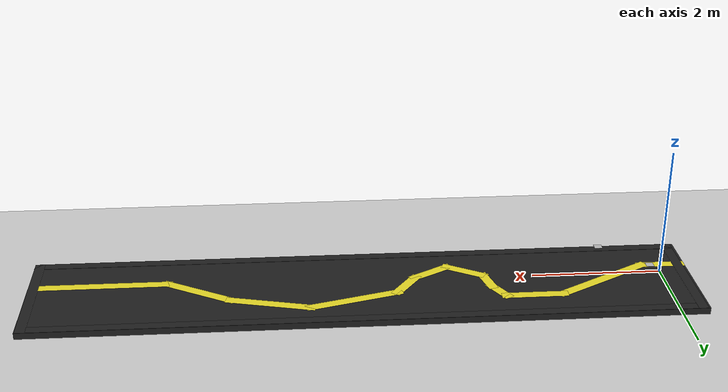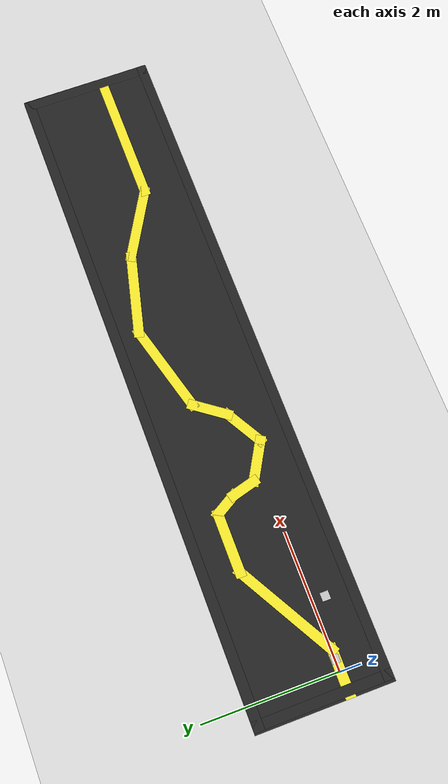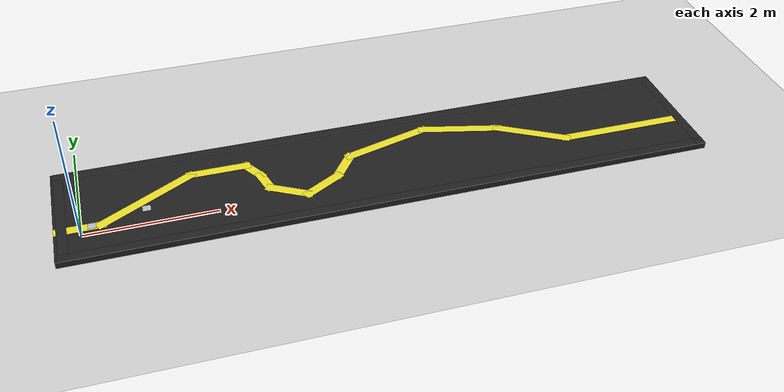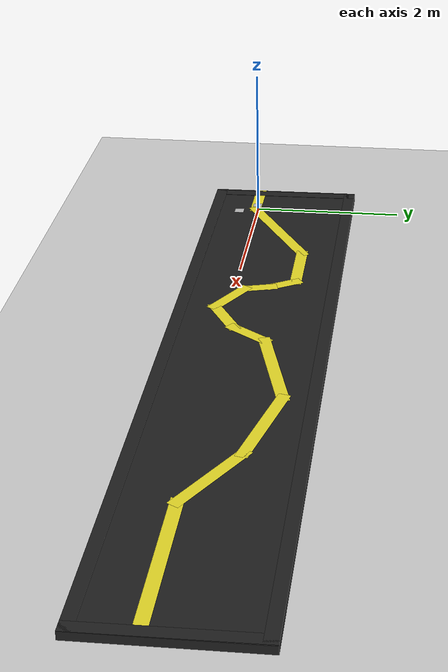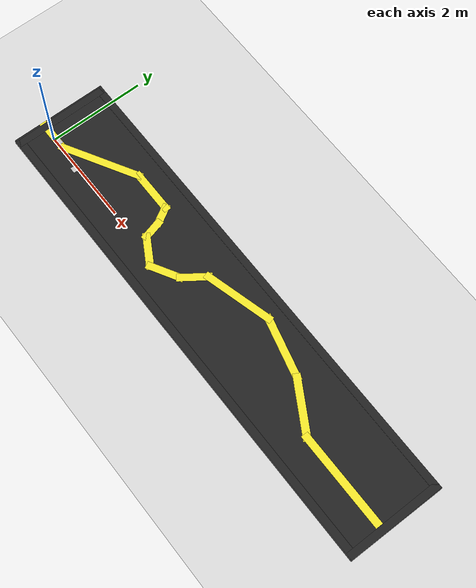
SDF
<sdf version="1.6">
 <world name="default">
  <light name="sun" type="directional">
   <pose>0 0 10 0 -0 0</pose>
   <diffuse>0.8 0.8 0.8 1</diffuse>
   <specular>0.2 0.2 0.2 1</specular>
   <attenuation>
    <range>1000</range>
    <constant>0.9</constant>
    <linear>0.01</linear>
    <quadratic>0.001</quadratic>
   </attenuation>
   <direction>-0.5 0.1 -0.9</direction>
  </light>
  <model name="ground_plane">
   <static>1</static>
   <link name="link">
    <collision name="collision">
     <geometry><plane><normal>0 0 1</normal><size>100 100</size></plane></geometry>
     <surface><friction><ode><mu>100</mu><mu2>50</mu2></ode></friction></surface>
    </collision>
    <visual name="visual">
     <cast_shadows>0</cast_shadows>
     <geometry><plane><normal>0 0 1</normal><size>100 100</size></plane></geometry>
     <material>
      <script><uri>file://media/materials/scripts/gazebo.material</uri><name>Gazebo/Grey</name></script>
     </material>
    </visual>
   </link>
  </model>
  <gravity>0 0 -9.8</gravity>
  <magnetic_field>6e-06 2.3e-05 -4.2e-05</magnetic_field>
  <atmosphere type="adiabatic"/>
  <physics name="default_physics" default="0" type="ode">
   <max_step_size>0.001</max_step_size>
   <real_time_factor>1</real_time_factor>
   <real_time_update_rate>1000</real_time_update_rate>
  </physics>
  <scene><ambient>0.4 0.4 0.4 1</ambient><background>0.7 0.7 0.7 1</background><shadows>1</shadows></scene>
  <audio><device>default</device></audio>
  <spherical_coordinates>
   <surface_model>EARTH_WGS84</surface_model>
   <latitude_deg>0</latitude_deg>
   <longitude_deg>0</longitude_deg>
   <elevation>0</elevation>
   <heading_deg>0</heading_deg>
  </spherical_coordinates>
  <model name="aruco">
   <static>1</static>
   <link name="link">
    <visual name="visual">
     <geometry><mesh><uri>model://aruco/meshes/aruco.dae</uri><scale>0.24 0.24 0.24</scale></mesh></geometry>
    </visual>
   </link>
   <pose>0.109589 0.012177 0.131893 0 1.54825 0</pose>
  </model>
  <model name="aruco2">
   <static>1</static>
   <link name="link">
    <visual name="visual">
     <geometry><mesh><uri>model://aruco2/meshes/aruco2.dae</uri><scale>0.24 0.24 0.24</scale></mesh></geometry>
    </visual>
   </link>
   <pose>0.910885 -0.139689 0.39892 3.14159 1.56861 3.14159</pose>
  </model>
  <model name="PISTA">
   <pose>4.6485 0.363619 0.13575 -3.1364 0 0</pose>
   <link name="Floor_0">
    <collision name="Floor_0_Collision">
     <geometry><box><size>10.0404 2.0108 0.1</size></box></geometry>
     <pose>0 0 0.05 0 -0 0</pose>
    </collision>
    <visual name="Floor_0_Visual">
     <pose>0 0 0.05 0 -0 0</pose>
     <geometry><box><size>10.0404 2.0108 0.1</size></box></geometry>
     <material>
      <script><uri>file://media/materials/scripts/gazebo.material</uri><name>Gazebo/Black</name></script>
      <ambient>0 0 0 0</ambient>
     </material>
     <meta><layer>1</layer></meta>
    </visual>
    <pose>0 -0 0.005 0 -0 0</pose>
   </link>
   <link name="Wall_10">
    <collision name="Wall_10_Collision">
     <geometry><box><size>2.01003 0.15 0.005</size></box></geometry>
     <pose>0 0 0.0025 0 -0 0</pose>
    </collision>
    <visual name="Wall_10_Visual">
     <pose>0 0 0.0025 0 -0 0</pose>
     <geometry><box><size>2.01003 0.15 0.005</size></box></geometry>
     <material>
      <script><uri>file://media/materials/scripts/gazebo.material</uri><name>Gazebo/Black</name></script>
      <ambient>0 0 0 0</ambient>
     </material>
     <meta><layer>0</layer></meta>
    </visual>
    <pose>-4.9102 -0 0 0 -0 -1.57617</pose>
   </link>
   <link name="Wall_12">
    <collision name="Wall_12_Collision">
     <geometry><box><size>10 0.15 0.005</size></box></geometry>
     <pose>0 0 0.0025 0 -0 0</pose>
    </collision>
    <visual name="Wall_12_Visual">
     <pose>0 0 0.0025 0 -0 0</pose>
     <geometry><box><size>10 0.15 0.005</size></box></geometry>
     <material>
      <script><uri>file://media/materials/scripts/gazebo.material</uri><name>Gazebo/Black</name></script>
      <ambient>0 0 0 0</ambient>
     </material>
     <meta><layer>1</layer></meta>
    </visual>
    <pose>0.009799 -0.93 0.005 0 -0 0</pose>
   </link>
   <link name="Wall_13">
    <collision name="Wall_13_Collision">
     <geometry><box><size>2.01003 0.15 0.005</size></box></geometry>
     <pose>0 0 0.0025 0 -0 0</pose>
    </collision>
    <visual name="Wall_13_Visual">
     <pose>0 0 0.0025 0 -0 0</pose>
     <geometry><box><size>2.01003 0.15 0.005</size></box></geometry>
     <material>
      <script><uri>file://media/materials/scripts/gazebo.material</uri><name>Gazebo/Black</name></script>
      <ambient>0 0 0 0</ambient>
     </material>
     <meta><layer>1</layer></meta>
    </visual>
    <pose>4.9398 -0 0.005 0 -0 1.56542</pose>
   </link>
   <link name="Wall_14">
    <collision name="Wall_14_Collision">
     <geometry><box><size>10 0.15 0.005</size></box></geometry>
     <pose>0 0 0.0025 0 -0 0</pose>
    </collision>
    <visual name="Wall_14_Visual">
     <pose>0 0 0.0025 0 -0 0</pose>
     <geometry><box><size>10 0.15 0.005</size></box></geometry>
     <material>
      <script><uri>file://media/materials/scripts/gazebo.material</uri><name>Gazebo/Black</name></script>
      <ambient>0 0 0 0</ambient>
     </material>
     <meta><layer>1</layer></meta>
    </visual>
    <pose>0.019799 0.93 0.005 0 -0 3.14159</pose>
   </link>
   <link name="Wall_15">
    <collision name="Wall_15_Collision">
     <geometry><box><size>2.01003 0.15 0.005</size></box></geometry>
     <pose>0 0 0.0025 0 -0 0</pose>
    </collision>
    <visual name="Wall_15_Visual">
     <pose>0 0 0.0025 0 -0 0</pose>
     <geometry><box><size>2.01003 0.15 0.005</size></box></geometry>
     <material>
      <script><uri>file://media/materials/scripts/gazebo.material</uri><name>Gazebo/Black</name></script>
      <ambient>0 0 0 0</ambient>
     </material>
     <meta><layer>1</layer></meta>
    </visual>
    <pose>-4.9102 -0 0.005 0 -0 -1.57617</pose>
   </link>
   <link name="Wall_16">
    <collision name="Wall_16_Collision">
     <geometry><box><size>0.75 0.15 0.01</size></box></geometry>
     <pose>0 0 0.003 0 -0 0</pose>
    </collision>
    <visual name="Wall_16_Visual">
     <pose>0 0 0.003 0 -0 0</pose>
     <geometry><box><size>0.75 0.15 0.008</size></box></geometry>
     <material>
      <script><uri>file://media/materials/scripts/gazebo.material</uri><name>Gazebo/Yellow</name></script>
      <ambient>1 1 1 1</ambient>
     </material>
     <meta><layer>1</layer></meta>
    </visual>
    <pose>-4.6452 0.36 0.005 0 -0 0</pose>
   </link>
   <link name="Wall_17">
    <collision name="Wall_17_Collision">
     <geometry><box><size>1.74732 0.15 0.01</size></box></geometry>
     <pose>0 0 0.003 0 -0 0</pose>
    </collision>
    <visual name="Wall_17_Visual">
     <pose>0 0 0.003 0 -0 0</pose>
     <geometry><box><size>1.74732 0.15 0.01</size></box></geometry>
     <material>
      <script><uri>file://media/materials/scripts/gazebo.material</uri><name>Gazebo/Yellow</name></script>
      <ambient>1 1 1 1</ambient>
     </material>
     <meta><layer>1</layer></meta>
    </visual>
    <pose>-3.6522 -0.037 0.005 0 -0 -0.520233</pose>
   </link>
   <link name="Wall_18">
    <collision name="Wall_18_Collision">
     <geometry><box><size>1 0.15 0.01</size></box></geometry>
     <pose>0 0 0.003 0 -0 0</pose>
    </collision>
    <visual name="Wall_18_Visual">
     <pose>0 0 0.003 0 -0 0</pose>
     <geometry><box><size>1 0.15 0.01</size></box></geometry>
     <material>
      <script><uri>file://media/materials/scripts/gazebo.material</uri><name>Gazebo/Yellow</name></script>
      <ambient>1 1 1 1</ambient>
     </material>
     <meta><layer>1</layer></meta>
    </visual>
    <pose>-2.5342 -0.434 0.005 0 -0 0</pose>
   </link>
   <link name="Wall_19">
    <collision name="Wall_19_Collision">
     <geometry><box><size>0.494723 0.15 0.01</size></box></geometry>
     <pose>0 0 0.003 0 -0 0</pose>
    </collision>
    <visual name="Wall_19_Visual">
     <pose>0 0 0.003 0 -0 0</pose>
     <geometry><box><size>0.494723 0.15 0.01</size></box></geometry>
     <material>
      <script><uri>file://media/materials/scripts/gazebo.material</uri><name>Gazebo/Yellow</name></script>
      <ambient>1 1 1 1</ambient>
     </material>
     <meta><layer>1</layer></meta>
    </visual>
    <pose>-2.0217 -0.2855 0.005 0 -0 1.03834</pose>
   </link>
   <link name="Wall_20">
    <collision name="Wall_20_Collision">
     <geometry><box><size>0.5 0.15 0.01</size></box></geometry>
     <pose>0 0 0.003 0 -0 0</pose>
    </collision>
    <visual name="Wall_20_Visual">
     <pose>0 0 0.003 0 -0 0</pose>
     <geometry><box><size>0.5 0.15 0.01</size></box></geometry>
     <material>
      <script><uri>file://media/materials/scripts/gazebo.material</uri><name>Gazebo/Yellow</name></script>
      <ambient>1 1 1 1</ambient>
     </material>
     <meta><layer>1</layer></meta>
    </visual>
    <pose>-1.8892 0.032 0.005 0 -0 1.31056</pose>
   </link>
   <link name="Wall_21">
    <collision name="Wall_21_Collision">
     <geometry><box><size>0.75 0.15 0.01</size></box></geometry>
     <pose>0 0 0.003 0 -0 0</pose>
    </collision>
    <visual name="Wall_21_Visual">
     <pose>0 0 0.003 0 -0 0</pose>
     <geometry><box><size>0.75 0.15 0.01</size></box></geometry>
     <material>
      <script><uri>file://media/materials/scripts/gazebo.material</uri><name>Gazebo/Yellow</name></script>
      <ambient>1 1 1 1</ambient>
     </material>
     <meta><layer>1</layer></meta>
    </visual>
    <pose>-1.5842 0.351 0.005 0 -0 0.523278</pose>
   </link>
   <link name="Wall_22">
    <collision name="Wall_22_Collision">
     <geometry><box><size>0.75 0.15 0.01</size></box></geometry>
     <pose>0 0 0.003 0 -0 0</pose>
    </collision>
    <visual name="Wall_22_Visual">
     <pose>0 0 0.003 0 -0 0</pose>
     <geometry><box><size>0.75 0.15 0.01</size></box></geometry>
     <material>
      <script><uri>file://media/materials/scripts/gazebo.material</uri><name>Gazebo/Yellow</name></script>
      <ambient>1 1 1 1</ambient>
     </material>
     <meta><layer>1</layer></meta>
    </visual>
    <pose>-1.0647 0.351 0.005 0 -0 -0.524112</pose>
   </link>
   <link name="Wall_23">
    <collision name="Wall_23_Collision">
     <geometry><box><size>0.670096 0.15 0.01</size></box></geometry>
     <pose>0 0 0.003 0 -0 0</pose>
    </collision>
    <visual name="Wall_23_Visual">
     <pose>0 0 0.003 0 -0 0</pose>
     <geometry><box><size>0.670096 0.15 0.01</size></box></geometry>
     <material>
      <script><uri>file://media/materials/scripts/gazebo.material</uri><name>Gazebo/Yellow</name></script>
      <ambient>1 1 1 1</ambient>
     </material>
     <meta><layer>1</layer></meta>
    </visual>
    <pose>-0.653201 -0.01 0.005 0 -0 -0.946524</pose>
   </link>
   <link name="Wall_24">
    <collision name="Wall_24_Collision">
     <geometry><box><size>1.50252 0.15 0.01</size></box></geometry>
     <pose>0 0 0.003 0 -0 0</pose>
    </collision>
    <visual name="Wall_24_Visual">
     <pose>0 0 0.003 0 -0 0</pose>
     <geometry><box><size>1.50252 0.15 0.01</size></box></geometry>
     <material>
      <script><uri>file://media/materials/scripts/gazebo.material</uri><name>Gazebo/Yellow</name></script>
      <ambient>1 1 1 1</ambient>
     </material>
     <meta><layer>1</layer></meta>
    </visual>
    <pose>0.150799 -0.4005 0.005 0 -0 -0.268651</pose>
   </link>
   <link name="Wall_25">
    <collision name="Wall_25_Collision">
     <geometry><box><size>1.36268 0.15 0.01</size></box></geometry>
     <pose>0 0 0.003 0 -0 0</pose>
    </collision>
    <visual name="Wall_25_Visual">
     <pose>0 0 0.003 0 -0 0</pose>
     <geometry><box><size>1.36268 0.15 0.01</size></box></geometry>
     <material>
      <script><uri>file://media/materials/scripts/gazebo.material</uri><name>Gazebo/Yellow</name></script>
      <ambient>1 1 1 1</ambient>
     </material>
     <meta><layer>1</layer></meta>
    </visual>
    <pose>1.3913 -0.434 0.005 0 -0 0.243179</pose>
   </link>
   <link name="Wall_26">
    <collision name="Wall_26_Collision">
     <geometry><box><size>1.25032 0.15 0.01</size></box></geometry>
     <pose>0 0 0.003 0 -0 0</pose>
    </collision>
    <visual name="Wall_26_Visual">
     <pose>0 0 0.003 0 -0 0</pose>
     <geometry><box><size>1.25032 0.15 0.01</size></box></geometry>
     <material>
      <script><uri>file://media/materials/scripts/gazebo.material</uri><name>Gazebo/Yellow</name></script>
      <ambient>1 1 1 1</ambient>
     </material>
     <meta><layer>1</layer></meta>
    </visual>
    <pose>2.4563 -0.013 0.005 0 -0 0.52343</pose>
   </link>
   <link name="Wall_27">
    <collision name="Wall_27_Collision">
     <geometry><box><size>2.006 0.15 0.01</size></box></geometry>
     <pose>0 0 0.003 0 -0 0</pose>
    </collision>
    <visual name="Wall_27_Visual">
     <pose>0 0 0.003 0 -0 0</pose>
     <geometry><box><size>2.006 0.15 0.01</size></box></geometry>
     <material>
      <script><uri>file://media/materials/scripts/gazebo.material</uri><name>Gazebo/Yellow</name></script>
      <ambient>1 1 1 1</ambient>
     </material>
     <meta><layer>1</layer></meta>
    </visual>
    <pose>3.8608 0.262 0.005 0 -0 0</pose>
   </link>
   <link name="Wall_6">
    <collision name="Wall_6_Collision">
     <geometry><box><size>10 0.15 0.005</size></box></geometry>
     <pose>0 0 0.0025 0 -0 0</pose>
    </collision>
    <visual name="Wall_6_Visual">
     <pose>0 0 0.0025 0 -0 0</pose>
     <geometry><box><size>10 0.15 0.005</size></box></geometry>
     <material>
      <script><uri>file://media/materials/scripts/gazebo.material</uri><name>Gazebo/Black</name></script>
      <ambient>0 0 0 0</ambient>
     </material>
     <meta><layer>0</layer></meta>
    </visual>
    <pose>0.009799 -0.93 0 0 -0 0</pose>
   </link>
   <link name="Wall_7">
    <collision name="Wall_7_Collision">
     <geometry><box><size>2.01003 0.15 0.005</size></box></geometry>
     <pose>0 0 0.0025 0 -0 0</pose>
    </collision>
    <visual name="Wall_7_Visual">
     <pose>0 0 0.0025 0 -0 0</pose>
     <geometry><box><size>2.01003 0.15 0.005</size></box></geometry>
     <material>
      <script><uri>file://media/materials/scripts/gazebo.material</uri><name>Gazebo/Black</name></script>
      <ambient>0 0 0 0</ambient>
     </material>
     <meta><layer>0</layer></meta>
    </visual>
    <pose>4.9398 -0 0 0 -0 1.56542</pose>
   </link>
   <link name="Wall_8">
    <collision name="Wall_8_Collision">
     <geometry><box><size>10 0.15 0.005</size></box></geometry>
     <pose>0 0 0.0025 0 -0 0</pose>
    </collision>
    <visual name="Wall_8_Visual">
     <pose>0 0 0.0025 0 -0 0</pose>
     <geometry><box><size>10 0.15 0.005</size></box></geometry>
     <material>
      <script><uri>file://media/materials/scripts/gazebo.material</uri><name>Gazebo/Black</name></script>
      <ambient>0 0 0 0</ambient>
     </material>
     <meta><layer>0</layer></meta>
    </visual>
    <pose>0.019799 0.93 0 0 -0 3.14159</pose>
   </link>
   <static>1</static>
  </model>
 </world>
</sdf>
